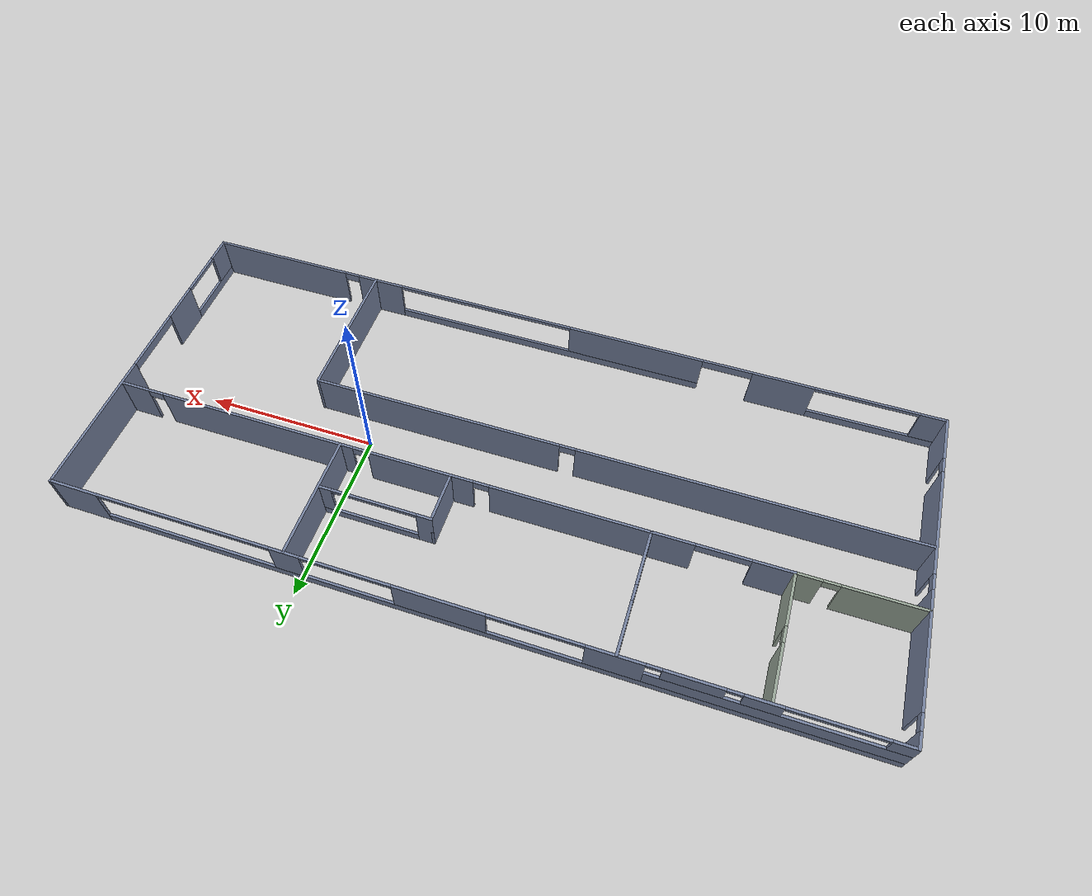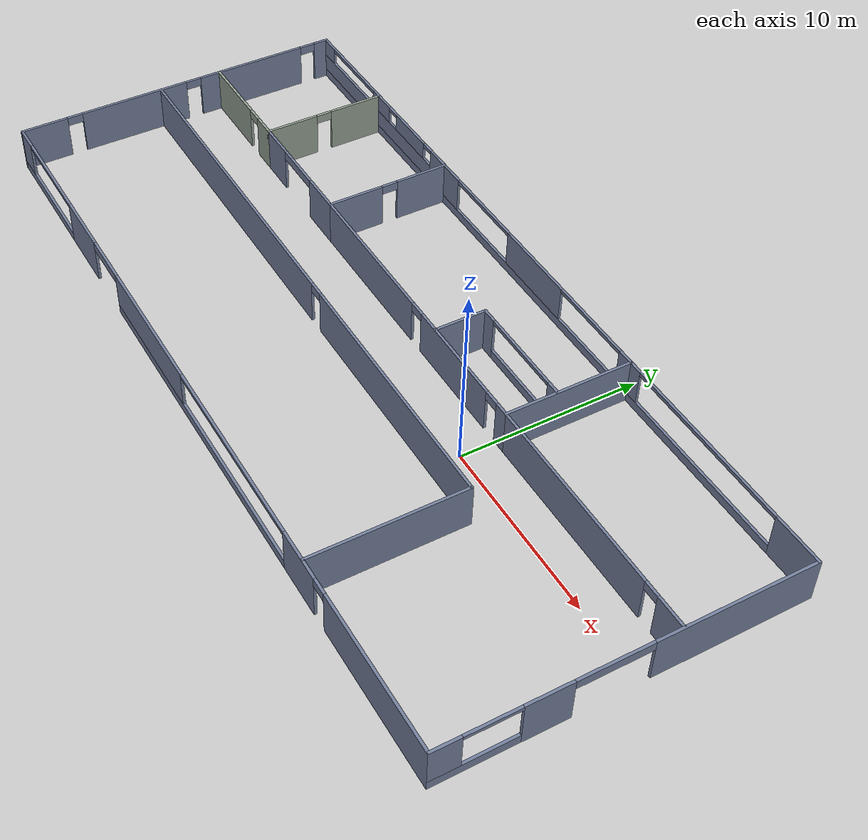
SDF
<?xml version='1.0'?>
<sdf version='1.6'>
  <model name='RnDBuilding'>
    <pose frame=''>-8.21669 -0.525696 0 0 -0 0</pose>
    <link name='Wall_0'>
      <pose frame=''>22.425 0 0 0 0 -1.5708</pose>
      <visual name='Wall_0_Visual_0'>
        <pose frame=''>-5.35844 0 1.25 0 -0 0</pose>
        <geometry>
          <box>
            <size>8.53312 0.15 2.5</size>
          </box>
        </geometry>
        <material>
          <script>
            <uri>file://media/materials/scripts/gazebo.material</uri>
            <name>Gazebo/Grey</name>
          </script>
          <ambient>0.45098 0.498039 0.611765 1</ambient>
        </material>
        <meta>
          <layer>0</layer>
        </meta>
      </visual>
      <collision name='Wall_0_Collision_0'>
        <geometry>
          <box>
            <size>8.53312 0.15 2.5</size>
          </box>
        </geometry>
        <pose frame=''>-5.35844 0 1.25 0 -0 0</pose>
      </collision>
      <visual name='Wall_0_Visual_1'>
        <pose frame=''>4.02226 0 1.25 0 -0 0</pose>
        <geometry>
          <box>
            <size>2.42827 0.15 2.5</size>
          </box>
        </geometry>
        <material>
          <script>
            <uri>file://media/materials/scripts/gazebo.material</uri>
            <name>Gazebo/Grey</name>
          </script>
          <ambient>0.45098 0.498039 0.611765 1</ambient>
        </material>
        <meta>
          <layer>0</layer>
        </meta>
      </visual>
      <collision name='Wall_0_Collision_1'>
        <geometry>
          <box>
            <size>2.42827 0.15 2.5</size>
          </box>
        </geometry>
        <pose frame=''>4.02226 0 1.25 0 -0 0</pose>
      </collision>
      <visual name='Wall_0_Visual_2'>
        <pose frame=''>7.4307 0 0.25 0 -0 0</pose>
        <geometry>
          <box>
            <size>4.38861 0.15 0.5</size>
          </box>
        </geometry>
        <material>
          <script>
            <uri>file://media/materials/scripts/gazebo.material</uri>
            <name>Gazebo/Grey</name>
          </script>
          <ambient>0.45098 0.498039 0.611765 1</ambient>
        </material>
        <meta>
          <layer>0</layer>
        </meta>
      </visual>
      <collision name='Wall_0_Collision_2'>
        <geometry>
          <box>
            <size>4.38861 0.15 0.5</size>
          </box>
        </geometry>
        <pose frame=''>7.4307 0 0.25 0 -0 0</pose>
      </collision>
      <visual name='Wall_0_Visual_3'>
        <pose frame=''>8.8307 0 1.5 0 -0 0</pose>
        <geometry>
          <box>
            <size>1.58861 0.15 2</size>
          </box>
        </geometry>
        <material>
          <script>
            <uri>file://media/materials/scripts/gazebo.material</uri>
            <name>Gazebo/Grey</name>
          </script>
          <ambient>0.45098 0.498039 0.611765 1</ambient>
        </material>
        <meta>
          <layer>0</layer>
        </meta>
      </visual>
      <collision name='Wall_0_Collision_3'>
        <geometry>
          <box>
            <size>1.58861 0.15 2</size>
          </box>
        </geometry>
        <pose frame=''>8.8307 0 1.5 0 -0 0</pose>
      </collision>
      <visual name='Wall_0_Visual_4'>
        <pose frame=''>0.858122 0 2.25 0 -0 0</pose>
        <geometry>
          <box>
            <size>3.9 0.15 0.5</size>
          </box>
        </geometry>
        <material>
          <script>
            <uri>file://media/materials/scripts/gazebo.material</uri>
            <name>Gazebo/Grey</name>
          </script>
          <ambient>0.45098 0.498039 0.611765 1</ambient>
        </material>
        <meta>
          <layer>0</layer>
        </meta>
      </visual>
      <collision name='Wall_0_Collision_4'>
        <geometry>
          <box>
            <size>3.9 0.15 0.5</size>
          </box>
        </geometry>
        <pose frame=''>0.858122 0 2.25 0 -0 0</pose>
      </collision>
      <visual name='Wall_0_Visual_5'>
        <pose frame=''>6.63639 0 2.4 0 -0 0</pose>
        <geometry>
          <box>
            <size>2.8 0.15 0.2</size>
          </box>
        </geometry>
        <material>
          <script>
            <uri>file://media/materials/scripts/gazebo.material</uri>
            <name>Gazebo/Grey</name>
          </script>
          <ambient>0.45098 0.498039 0.611765 1</ambient>
        </material>
        <meta>
          <layer>0</layer>
        </meta>
      </visual>
      <collision name='Wall_0_Collision_5'>
        <geometry>
          <box>
            <size>2.8 0.15 0.2</size>
          </box>
        </geometry>
        <pose frame=''>6.63639 0 2.4 0 -0 0</pose>
      </collision>
    </link>
    <link name='Wall_1'>
      <pose frame=''>0 -9.55 0 0 -0 3.14159</pose>
      <visual name='Wall_1_Visual_0'>
        <pose frame=''>-18.1979 0 1.25 0 -0 0</pose>
        <geometry>
          <box>
            <size>8.60412 0.15 2.5</size>
          </box>
        </geometry>
        <material>
          <script>
            <uri>file://media/materials/scripts/gazebo.material</uri>
            <name>Gazebo/Grey</name>
          </script>
          <ambient>0.45098 0.498039 0.611765 1</ambient>
        </material>
        <meta>
          <layer>0</layer>
        </meta>
      </visual>
      <collision name='Wall_1_Collision_0'>
        <geometry>
          <box>
            <size>8.60412 0.15 2.5</size>
          </box>
        </geometry>
        <pose frame=''>-18.1979 0 1.25 0 -0 0</pose>
      </collision>
      <visual name='Wall_1_Visual_1'>
        <pose frame=''>-11.5611 0 1.25 0 -0 0</pose>
        <geometry>
          <box>
            <size>2.86961 0.15 2.5</size>
          </box>
        </geometry>
        <material>
          <script>
            <uri>file://media/materials/scripts/gazebo.material</uri>
            <name>Gazebo/Grey</name>
          </script>
          <ambient>0.45098 0.498039 0.611765 1</ambient>
        </material>
        <meta>
          <layer>0</layer>
        </meta>
      </visual>
      <collision name='Wall_1_Collision_1'>
        <geometry>
          <box>
            <size>2.86961 0.15 2.5</size>
          </box>
        </geometry>
        <pose frame=''>-11.5611 0 1.25 0 -0 0</pose>
      </collision>
      <visual name='Wall_1_Visual_2'>
        <pose frame=''>13.3816 0 1.25 0 -0 0</pose>
        <geometry>
          <box>
            <size>3.56837 0.15 2.5</size>
          </box>
        </geometry>
        <material>
          <script>
            <uri>file://media/materials/scripts/gazebo.material</uri>
            <name>Gazebo/Grey</name>
          </script>
          <ambient>0.45098 0.498039 0.611765 1</ambient>
        </material>
        <meta>
          <layer>0</layer>
        </meta>
      </visual>
      <collision name='Wall_1_Collision_2'>
        <geometry>
          <box>
            <size>3.56837 0.15 2.5</size>
          </box>
        </geometry>
        <pose frame=''>13.3816 0 1.25 0 -0 0</pose>
      </collision>
      <visual name='Wall_1_Visual_3'>
        <pose frame=''>-0.714424 0 0.25 0 -0 0</pose>
        <geometry>
          <box>
            <size>18.8237 0.15 0.5</size>
          </box>
        </geometry>
        <material>
          <script>
            <uri>file://media/materials/scripts/gazebo.material</uri>
            <name>Gazebo/Grey</name>
          </script>
          <ambient>0.45098 0.498039 0.611765 1</ambient>
        </material>
        <meta>
          <layer>0</layer>
        </meta>
      </visual>
      <collision name='Wall_1_Collision_3'>
        <geometry>
          <box>
            <size>18.8237 0.15 0.5</size>
          </box>
        </geometry>
        <pose frame=''>-0.714424 0 0.25 0 -0 0</pose>
      </collision>
      <visual name='Wall_1_Visual_4'>
        <pose frame=''>18.8329 0 0.25 0 -0 0</pose>
        <geometry>
          <box>
            <size>7.33421 0.15 0.5</size>
          </box>
        </geometry>
        <material>
          <script>
            <uri>file://media/materials/scripts/gazebo.material</uri>
            <name>Gazebo/Grey</name>
          </script>
          <ambient>0.45098 0.498039 0.611765 1</ambient>
        </material>
        <meta>
          <layer>0</layer>
        </meta>
      </visual>
      <collision name='Wall_1_Collision_4'>
        <geometry>
          <box>
            <size>7.33421 0.15 0.5</size>
          </box>
        </geometry>
        <pose frame=''>18.8329 0 0.25 0 -0 0</pose>
      </collision>
      <visual name='Wall_1_Visual_5'>
        <pose frame=''>4.68558 0 1.5 0 -0 0</pose>
        <geometry>
          <box>
            <size>8.0237 0.15 2</size>
          </box>
        </geometry>
        <material>
          <script>
            <uri>file://media/materials/scripts/gazebo.material</uri>
            <name>Gazebo/Grey</name>
          </script>
          <ambient>0.45098 0.498039 0.611765 1</ambient>
        </material>
        <meta>
          <layer>0</layer>
        </meta>
      </visual>
      <collision name='Wall_1_Collision_5'>
        <geometry>
          <box>
            <size>8.0237 0.15 2</size>
          </box>
        </geometry>
        <pose frame=''>4.68558 0 1.5 0 -0 0</pose>
      </collision>
      <visual name='Wall_1_Visual_6'>
        <pose frame=''>4.68558 0 1.5 0 -0 0</pose>
        <geometry>
          <box>
            <size>8.0237 0.15 2</size>
          </box>
        </geometry>
        <material>
          <script>
            <uri>file://media/materials/scripts/gazebo.material</uri>
            <name>Gazebo/Grey</name>
          </script>
          <ambient>0.45098 0.498039 0.611765 1</ambient>
        </material>
        <meta>
          <layer>0</layer>
        </meta>
      </visual>
      <collision name='Wall_1_Collision_6'>
        <geometry>
          <box>
            <size>8.0237 0.15 2</size>
          </box>
        </geometry>
        <pose frame=''>4.68558 0 1.5 0 -0 0</pose>
      </collision>
      <visual name='Wall_1_Visual_7'>
        <pose frame=''>21.7329 0 1.5 0 -0 0</pose>
        <geometry>
          <box>
            <size>1.53421 0.15 2</size>
          </box>
        </geometry>
        <material>
          <script>
            <uri>file://media/materials/scripts/gazebo.material</uri>
            <name>Gazebo/Grey</name>
          </script>
          <ambient>0.45098 0.498039 0.611765 1</ambient>
        </material>
        <meta>
          <layer>0</layer>
        </meta>
      </visual>
      <collision name='Wall_1_Collision_7'>
        <geometry>
          <box>
            <size>1.53421 0.15 2</size>
          </box>
        </geometry>
        <pose frame=''>21.7329 0 1.5 0 -0 0</pose>
      </collision>
      <visual name='Wall_1_Visual_8'>
        <pose frame=''>-13.4459 0 2.25 0 -0 0</pose>
        <geometry>
          <box>
            <size>0.9 0.15 0.5</size>
          </box>
        </geometry>
        <material>
          <script>
            <uri>file://media/materials/scripts/gazebo.material</uri>
            <name>Gazebo/Grey</name>
          </script>
          <ambient>0.45098 0.498039 0.611765 1</ambient>
        </material>
        <meta>
          <layer>0</layer>
        </meta>
      </visual>
      <collision name='Wall_1_Collision_8'>
        <geometry>
          <box>
            <size>0.9 0.15 0.5</size>
          </box>
        </geometry>
        <pose frame=''>-13.4459 0 2.25 0 -0 0</pose>
      </collision>
      <visual name='Wall_1_Visual_9'>
        <pose frame=''>10.1474 0 2.25 0 -0 0</pose>
        <geometry>
          <box>
            <size>2.9 0.15 0.5</size>
          </box>
        </geometry>
        <material>
          <script>
            <uri>file://media/materials/scripts/gazebo.material</uri>
            <name>Gazebo/Grey</name>
          </script>
          <ambient>0.45098 0.498039 0.611765 1</ambient>
        </material>
        <meta>
          <layer>0</layer>
        </meta>
      </visual>
      <collision name='Wall_1_Collision_9'>
        <geometry>
          <box>
            <size>2.9 0.15 0.5</size>
          </box>
        </geometry>
        <pose frame=''>10.1474 0 2.25 0 -0 0</pose>
      </collision>
      <visual name='Wall_1_Visual_10'>
        <pose frame=''>10.1474 0 2.25 0 -0 0</pose>
        <geometry>
          <box>
            <size>2.9 0.15 0.5</size>
          </box>
        </geometry>
        <material>
          <script>
            <uri>file://media/materials/scripts/gazebo.material</uri>
            <name>Gazebo/Grey</name>
          </script>
          <ambient>0.45098 0.498039 0.611765 1</ambient>
        </material>
        <meta>
          <layer>0</layer>
        </meta>
      </visual>
      <collision name='Wall_1_Collision_10'>
        <geometry>
          <box>
            <size>2.9 0.15 0.5</size>
          </box>
        </geometry>
        <pose frame=''>10.1474 0 2.25 0 -0 0</pose>
      </collision>
      <visual name='Wall_1_Visual_11'>
        <pose frame=''>-4.72627 0 2.4 0 -0 0</pose>
        <geometry>
          <box>
            <size>10.8 0.15 0.2</size>
          </box>
        </geometry>
        <material>
          <script>
            <uri>file://media/materials/scripts/gazebo.material</uri>
            <name>Gazebo/Grey</name>
          </script>
          <ambient>0.45098 0.498039 0.611765 1</ambient>
        </material>
        <meta>
          <layer>0</layer>
        </meta>
      </visual>
      <collision name='Wall_1_Collision_11'>
        <geometry>
          <box>
            <size>10.8 0.15 0.2</size>
          </box>
        </geometry>
        <pose frame=''>-4.72627 0 2.4 0 -0 0</pose>
      </collision>
      <visual name='Wall_1_Visual_12'>
        <pose frame=''>18.0658 0 2.4 0 -0 0</pose>
        <geometry>
          <box>
            <size>5.8 0.15 0.2</size>
          </box>
        </geometry>
        <material>
          <script>
            <uri>file://media/materials/scripts/gazebo.material</uri>
            <name>Gazebo/Grey</name>
          </script>
          <ambient>0.45098 0.498039 0.611765 1</ambient>
        </material>
        <meta>
          <layer>0</layer>
        </meta>
      </visual>
      <collision name='Wall_1_Collision_12'>
        <geometry>
          <box>
            <size>5.8 0.15 0.2</size>
          </box>
        </geometry>
        <pose frame=''>18.0658 0 2.4 0 -0 0</pose>
      </collision>
    </link>
    <link name='Wall_14'>
      <collision name='Wall_14_Collision'>
        <geometry>
          <box>
            <size>7.15 0.15 2.5</size>
          </box>
        </geometry>
        <pose frame=''>0 0 1.25 0 -0 0</pose>
      </collision>
      <visual name='Wall_14_Visual'>
        <pose frame=''>0 0 1.25 0 -0 0</pose>
        <geometry>
          <box>
            <size>7.15 0.15 2.5</size>
          </box>
        </geometry>
        <material>
          <script>
            <uri>file://media/materials/scripts/gazebo.material</uri>
            <name>Gazebo/Grey</name>
          </script>
          <ambient>0.45098 0.498039 0.611765 1</ambient>
        </material>
        <meta>
          <layer>0</layer>
        </meta>
      </visual>
      <pose frame=''>8.825 6.02489 0 0 -0 1.5708</pose>
    </link>
    <link name='Wall_16'>
      <pose frame=''>0.15 2.52489 0 0 -0 3.14159</pose>
      <visual name='Wall_16_Visual_0'>
        <pose frame=''>-8.3402 0 1.25 0 -0 0</pose>
        <geometry>
          <box>
            <size>0.819604 0.15 2.5</size>
          </box>
        </geometry>
        <material>
          <script>
            <uri>file://media/materials/scripts/gazebo.material</uri>
            <name>Gazebo/Grey</name>
          </script>
          <ambient>0.45098 0.498039 0.611765 1</ambient>
        </material>
        <meta>
          <layer>0</layer>
        </meta>
      </visual>
      <collision name='Wall_16_Collision_0'>
        <geometry>
          <box>
            <size>0.819604 0.15 2.5</size>
          </box>
        </geometry>
        <pose frame=''>-8.3402 0 1.25 0 -0 0</pose>
      </collision>
      <visual name='Wall_16_Visual_1'>
        <pose frame=''>-4.01436 0 1.25 0 -0 0</pose>
        <geometry>
          <box>
            <size>6.03206 0.15 2.5</size>
          </box>
        </geometry>
        <material>
          <script>
            <uri>file://media/materials/scripts/gazebo.material</uri>
            <name>Gazebo/Grey</name>
          </script>
          <ambient>0.45098 0.498039 0.611765 1</ambient>
        </material>
        <meta>
          <layer>0</layer>
        </meta>
      </visual>
      <collision name='Wall_16_Collision_1'>
        <geometry>
          <box>
            <size>6.03206 0.15 2.5</size>
          </box>
        </geometry>
        <pose frame=''>-4.01436 0 1.25 0 -0 0</pose>
      </collision>
      <visual name='Wall_16_Visual_2'>
        <pose frame=''>4.32583 0 1.25 0 -0 0</pose>
        <geometry>
          <box>
            <size>8.84833 0.15 2.5</size>
          </box>
        </geometry>
        <material>
          <script>
            <uri>file://media/materials/scripts/gazebo.material</uri>
            <name>Gazebo/Grey</name>
          </script>
          <ambient>0.45098 0.498039 0.611765 1</ambient>
        </material>
        <meta>
          <layer>0</layer>
        </meta>
      </visual>
      <collision name='Wall_16_Collision_2'>
        <geometry>
          <box>
            <size>8.84833 0.15 2.5</size>
          </box>
        </geometry>
        <pose frame=''>4.32583 0 1.25 0 -0 0</pose>
      </collision>
      <visual name='Wall_16_Visual_3'>
        <pose frame=''>-7.4804 0 2.25 0 -0 0</pose>
        <geometry>
          <box>
            <size>0.9 0.15 0.5</size>
          </box>
        </geometry>
        <material>
          <script>
            <uri>file://media/materials/scripts/gazebo.material</uri>
            <name>Gazebo/Grey</name>
          </script>
          <ambient>0.45098 0.498039 0.611765 1</ambient>
        </material>
        <meta>
          <layer>0</layer>
        </meta>
      </visual>
      <collision name='Wall_16_Collision_3'>
        <geometry>
          <box>
            <size>0.9 0.15 0.5</size>
          </box>
        </geometry>
        <pose frame=''>-7.4804 0 2.25 0 -0 0</pose>
      </collision>
      <visual name='Wall_16_Visual_4'>
        <pose frame=''>-0.548333 0 2.25 0 -0 0</pose>
        <geometry>
          <box>
            <size>0.9 0.15 0.5</size>
          </box>
        </geometry>
        <material>
          <script>
            <uri>file://media/materials/scripts/gazebo.material</uri>
            <name>Gazebo/Grey</name>
          </script>
          <ambient>0.45098 0.498039 0.611765 1</ambient>
        </material>
        <meta>
          <layer>0</layer>
        </meta>
      </visual>
      <collision name='Wall_16_Collision_4'>
        <geometry>
          <box>
            <size>0.9 0.15 0.5</size>
          </box>
        </geometry>
        <pose frame=''>-0.548333 0 2.25 0 -0 0</pose>
      </collision>
    </link>
    <link name='Wall_17'>
      <pose frame=''>-8.525 6.02489 0 0 -0 1.5708</pose>
      <visual name='Wall_17_Visual_0'>
        <pose frame=''>-1.97133 0 1.25 0 -0 0</pose>
        <geometry>
          <box>
            <size>3.20734 0.15 2.5</size>
          </box>
        </geometry>
        <material>
          <script>
            <uri>file://media/materials/scripts/gazebo.material</uri>
            <name>Gazebo/Grey</name>
          </script>
          <ambient>0.45098 0.498039 0.611765 1</ambient>
        </material>
        <meta>
          <layer>0</layer>
        </meta>
      </visual>
      <collision name='Wall_17_Collision_0'>
        <geometry>
          <box>
            <size>3.20734 0.15 2.5</size>
          </box>
        </geometry>
        <pose frame=''>-1.97133 0 1.25 0 -0 0</pose>
      </collision>
      <visual name='Wall_17_Visual_1'>
        <pose frame=''>2.05367 0 1.25 0 -0 0</pose>
        <geometry>
          <box>
            <size>3.04266 0.15 2.5</size>
          </box>
        </geometry>
        <material>
          <script>
            <uri>file://media/materials/scripts/gazebo.material</uri>
            <name>Gazebo/Grey</name>
          </script>
          <ambient>0.45098 0.498039 0.611765 1</ambient>
        </material>
        <meta>
          <layer>0</layer>
        </meta>
      </visual>
      <collision name='Wall_17_Collision_1'>
        <geometry>
          <box>
            <size>3.04266 0.15 2.5</size>
          </box>
        </geometry>
        <pose frame=''>2.05367 0 1.25 0 -0 0</pose>
      </collision>
      <visual name='Wall_17_Visual_2'>
        <pose frame=''>0.082341 0 2.25 0 -0 0</pose>
        <geometry>
          <box>
            <size>0.9 0.15 0.5</size>
          </box>
        </geometry>
        <material>
          <script>
            <uri>file://media/materials/scripts/gazebo.material</uri>
            <name>Gazebo/Grey</name>
          </script>
          <ambient>0.45098 0.498039 0.611765 1</ambient>
        </material>
        <meta>
          <layer>0</layer>
        </meta>
      </visual>
      <collision name='Wall_17_Collision_2'>
        <geometry>
          <box>
            <size>0.9 0.15 0.5</size>
          </box>
        </geometry>
        <pose frame=''>0.082341 0 2.25 0 -0 0</pose>
      </collision>
    </link>
    <link name='Wall_19'>
      <collision name='Wall_19_Collision'>
        <geometry>
          <box>
            <size>3 0.15 2.5</size>
          </box>
        </geometry>
        <pose frame=''>0 0 1.25 0 -0 0</pose>
      </collision>
      <visual name='Wall_19_Visual'>
        <pose frame=''>0 0 1.25 0 -0 0</pose>
        <geometry>
          <box>
            <size>3 0.15 2.5</size>
          </box>
        </geometry>
        <material>
          <script>
            <uri>file://media/materials/scripts/gazebo.material</uri>
            <name>Gazebo/Grey</name>
          </script>
          <ambient>0.45098 0.498039 0.611765 1</ambient>
        </material>
        <meta>
          <layer>0</layer>
        </meta>
      </visual>
      <pose frame=''>2.41972 3.94989 0 0 -0 1.5708</pose>
    </link>
    <link name='Wall_20'>
      <pose frame=''>5.59472 5.37489 0 0 -0 0</pose>
      <visual name='Wall_20_Visual_0'>
        <pose frame=''>-2.79096 0 1.25 0 -0 0</pose>
        <geometry>
          <box>
            <size>0.918074 0.15 2.5</size>
          </box>
        </geometry>
        <material>
          <script>
            <uri>file://media/materials/scripts/gazebo.material</uri>
            <name>Gazebo/Grey</name>
          </script>
          <ambient>0.45098 0.498039 0.611765 1</ambient>
        </material>
        <meta>
          <layer>0</layer>
        </meta>
      </visual>
      <collision name='Wall_20_Collision_0'>
        <geometry>
          <box>
            <size>0.918074 0.15 2.5</size>
          </box>
        </geometry>
        <pose frame=''>-2.79096 0 1.25 0 -0 0</pose>
      </collision>
      <visual name='Wall_20_Visual_1'>
        <pose frame=''>0.459037 0 0.25 0 -0 0</pose>
        <geometry>
          <box>
            <size>5.58193 0.15 0.5</size>
          </box>
        </geometry>
        <material>
          <script>
            <uri>file://media/materials/scripts/gazebo.material</uri>
            <name>Gazebo/Grey</name>
          </script>
          <ambient>0.45098 0.498039 0.611765 1</ambient>
        </material>
        <meta>
          <layer>0</layer>
        </meta>
      </visual>
      <collision name='Wall_20_Collision_1'>
        <geometry>
          <box>
            <size>5.58193 0.15 0.5</size>
          </box>
        </geometry>
        <pose frame=''>0.459037 0 0.25 0 -0 0</pose>
      </collision>
      <visual name='Wall_20_Visual_2'>
        <pose frame=''>2.85904 0 1.5 0 -0 0</pose>
        <geometry>
          <box>
            <size>0.781926 0.15 2</size>
          </box>
        </geometry>
        <material>
          <script>
            <uri>file://media/materials/scripts/gazebo.material</uri>
            <name>Gazebo/Grey</name>
          </script>
          <ambient>0.45098 0.498039 0.611765 1</ambient>
        </material>
        <meta>
          <layer>0</layer>
        </meta>
      </visual>
      <collision name='Wall_20_Collision_2'>
        <geometry>
          <box>
            <size>0.781926 0.15 2</size>
          </box>
        </geometry>
        <pose frame=''>2.85904 0 1.5 0 -0 0</pose>
      </collision>
      <visual name='Wall_20_Visual_3'>
        <pose frame=''>0.068074 0 2.4 0 -0 0</pose>
        <geometry>
          <box>
            <size>4.8 0.15 0.2</size>
          </box>
        </geometry>
        <material>
          <script>
            <uri>file://media/materials/scripts/gazebo.material</uri>
            <name>Gazebo/Grey</name>
          </script>
          <ambient>0.45098 0.498039 0.611765 1</ambient>
        </material>
        <meta>
          <layer>0</layer>
        </meta>
      </visual>
      <collision name='Wall_20_Collision_3'>
        <geometry>
          <box>
            <size>4.8 0.15 0.2</size>
          </box>
        </geometry>
        <pose frame=''>0.068074 0 2.4 0 -0 0</pose>
      </collision>
    </link>
    <link name='Wall_22'>
      <pose frame=''>-12.2 2.52489 0 0 -0 3.14159</pose>
      <visual name='Wall_22_Visual_0'>
        <pose frame=''>-2.55908 0 1.25 0 -0 0</pose>
        <geometry>
          <box>
            <size>2.38184 0.15 2.5</size>
          </box>
        </geometry>
        <material>
          <script>
            <uri>file://media/materials/scripts/gazebo.material</uri>
            <name>Gazebo/Grey</name>
          </script>
          <ambient>0.45098 0.498039 0.611765 1</ambient>
        </material>
        <meta>
          <layer>0</layer>
        </meta>
      </visual>
      <collision name='Wall_22_Collision_0'>
        <geometry>
          <box>
            <size>2.38184 0.15 2.5</size>
          </box>
        </geometry>
        <pose frame=''>-2.55908 0 1.25 0 -0 0</pose>
      </collision>
      <visual name='Wall_22_Visual_1'>
        <pose frame=''>2.64092 0 1.25 0 -0 0</pose>
        <geometry>
          <box>
            <size>2.21816 0.15 2.5</size>
          </box>
        </geometry>
        <material>
          <script>
            <uri>file://media/materials/scripts/gazebo.material</uri>
            <name>Gazebo/Grey</name>
          </script>
          <ambient>0.45098 0.498039 0.611765 1</ambient>
        </material>
        <meta>
          <layer>0</layer>
        </meta>
      </visual>
      <collision name='Wall_22_Collision_1'>
        <geometry>
          <box>
            <size>2.21816 0.15 2.5</size>
          </box>
        </geometry>
        <pose frame=''>2.64092 0 1.25 0 -0 0</pose>
      </collision>
      <visual name='Wall_22_Visual_2'>
        <pose frame=''>0.081841 0 2.25 0 -0 0</pose>
        <geometry>
          <box>
            <size>2.9 0.15 0.5</size>
          </box>
        </geometry>
        <material>
          <script>
            <uri>file://media/materials/scripts/gazebo.material</uri>
            <name>Gazebo/Grey</name>
          </script>
          <ambient>0.45098 0.498039 0.611765 1</ambient>
        </material>
        <meta>
          <layer>0</layer>
        </meta>
      </visual>
      <collision name='Wall_22_Collision_2'>
        <geometry>
          <box>
            <size>2.9 0.15 0.5</size>
          </box>
        </geometry>
        <pose frame=''>0.081841 0 2.25 0 -0 0</pose>
      </collision>
    </link>
    <link name='Wall_23'>
      <pose frame=''>-15.875 6.02489 0 0 -0 1.5708</pose>
      <visual name='Wall_23_Visual_0'>
        <pose frame=''>-2.04112 0 1.25 0 -0 0</pose>
        <geometry>
          <box>
            <size>3.06777 0.15 2.5</size>
          </box>
        </geometry>
        <material>
          <script>
            <uri>file://media/materials/scripts/gazebo.material</uri>
            <name>Gazebo/Grey</name>
          </script>
          <ambient>0.580392 0.631373 0.580392 1</ambient>
        </material>
        <meta>
          <layer>0</layer>
        </meta>
      </visual>
      <collision name='Wall_23_Collision_0'>
        <geometry>
          <box>
            <size>3.06777 0.15 2.5</size>
          </box>
        </geometry>
        <pose frame=''>-2.04112 0 1.25 0 -0 0</pose>
      </collision>
      <visual name='Wall_23_Visual_1'>
        <pose frame=''>1.98388 0 1.25 0 -0 0</pose>
        <geometry>
          <box>
            <size>3.18223 0.15 2.5</size>
          </box>
        </geometry>
        <material>
          <script>
            <uri>file://media/materials/scripts/gazebo.material</uri>
            <name>Gazebo/Grey</name>
          </script>
          <ambient>0.580392 0.631373 0.580392 1</ambient>
        </material>
        <meta>
          <layer>0</layer>
        </meta>
      </visual>
      <collision name='Wall_23_Collision_1'>
        <geometry>
          <box>
            <size>3.18223 0.15 2.5</size>
          </box>
        </geometry>
        <pose frame=''>1.98388 0 1.25 0 -0 0</pose>
      </collision>
      <visual name='Wall_23_Visual_2'>
        <pose frame=''>-0.05723 0 2.25 0 -0 0</pose>
        <geometry>
          <box>
            <size>0.9 0.15 0.5</size>
          </box>
        </geometry>
        <material>
          <script>
            <uri>file://media/materials/scripts/gazebo.material</uri>
            <name>Gazebo/Grey</name>
          </script>
          <ambient>0.580392 0.631373 0.580392 1</ambient>
        </material>
        <meta>
          <layer>0</layer>
        </meta>
      </visual>
      <collision name='Wall_23_Collision_2'>
        <geometry>
          <box>
            <size>0.9 0.15 0.5</size>
          </box>
        </geometry>
        <pose frame=''>-0.05723 0 2.25 0 -0 0</pose>
      </collision>
    </link>
    <link name='Wall_25'>
      <pose frame=''>-19.125 2.52489 0 0 -0 3.14159</pose>
      <visual name='Wall_25_Visual_0'>
        <pose frame=''>-2.61069 0 1.25 0 -0 0</pose>
        <geometry>
          <box>
            <size>1.42861 0.15 2.5</size>
          </box>
        </geometry>
        <material>
          <script>
            <uri>file://media/materials/scripts/gazebo.material</uri>
            <name>Gazebo/Grey</name>
          </script>
          <ambient>0.580392 0.631373 0.580392 1</ambient>
        </material>
        <meta>
          <layer>0</layer>
        </meta>
      </visual>
      <collision name='Wall_25_Collision_0'>
        <geometry>
          <box>
            <size>1.42861 0.15 2.5</size>
          </box>
        </geometry>
        <pose frame=''>-2.61069 0 1.25 0 -0 0</pose>
      </collision>
      <visual name='Wall_25_Visual_1'>
        <pose frame=''>1.16431 0 1.25 0 -0 0</pose>
        <geometry>
          <box>
            <size>4.32139 0.15 2.5</size>
          </box>
        </geometry>
        <material>
          <script>
            <uri>file://media/materials/scripts/gazebo.material</uri>
            <name>Gazebo/Grey</name>
          </script>
          <ambient>0.580392 0.631373 0.580392 1</ambient>
        </material>
        <meta>
          <layer>0</layer>
        </meta>
      </visual>
      <collision name='Wall_25_Collision_1'>
        <geometry>
          <box>
            <size>4.32139 0.15 2.5</size>
          </box>
        </geometry>
        <pose frame=''>1.16431 0 1.25 0 -0 0</pose>
      </collision>
      <visual name='Wall_25_Visual_2'>
        <pose frame=''>-1.44639 0 2.25 0 -0 0</pose>
        <geometry>
          <box>
            <size>0.9 0.15 0.5</size>
          </box>
        </geometry>
        <material>
          <script>
            <uri>file://media/materials/scripts/gazebo.material</uri>
            <name>Gazebo/Grey</name>
          </script>
          <ambient>0.580392 0.631373 0.580392 1</ambient>
        </material>
        <meta>
          <layer>0</layer>
        </meta>
      </visual>
      <collision name='Wall_25_Collision_2'>
        <geometry>
          <box>
            <size>0.9 0.15 0.5</size>
          </box>
        </geometry>
        <pose frame=''>-1.44639 0 2.25 0 -0 0</pose>
      </collision>
    </link>
    <link name='Wall_27'>
      <collision name='Wall_27_Collision'>
        <geometry>
          <box>
            <size>8.5 0.15 2.5</size>
          </box>
        </geometry>
        <pose frame=''>0 0 1.25 0 -0 0</pose>
      </collision>
      <visual name='Wall_27_Visual'>
        <pose frame=''>0 0 1.25 0 -0 0</pose>
        <geometry>
          <box>
            <size>8.5 0.15 2.5</size>
          </box>
        </geometry>
        <material>
          <script>
            <uri>file://media/materials/scripts/gazebo.material</uri>
            <name>Gazebo/Grey</name>
          </script>
          <ambient>0.45098 0.498039 0.611765 1</ambient>
        </material>
        <meta>
          <layer>0</layer>
        </meta>
      </visual>
      <pose frame=''>11.8641 -5.3498 0 0 -0 1.5708</pose>
    </link>
    <link name='Wall_28'>
      <pose frame=''>-5.23593 -1.1748 0 0 -0 3.14159</pose>
      <visual name='Wall_28_Visual_0'>
        <pose frame=''>-9.94194 0 1.25 0 -0 0</pose>
        <geometry>
          <box>
            <size>14.4661 0.15 2.5</size>
          </box>
        </geometry>
        <material>
          <script>
            <uri>file://media/materials/scripts/gazebo.material</uri>
            <name>Gazebo/Grey</name>
          </script>
          <ambient>0.45098 0.498039 0.611765 1</ambient>
        </material>
        <meta>
          <layer>0</layer>
        </meta>
      </visual>
      <collision name='Wall_28_Collision_0'>
        <geometry>
          <box>
            <size>14.4661 0.15 2.5</size>
          </box>
        </geometry>
        <pose frame=''>-9.94194 0 1.25 0 -0 0</pose>
      </collision>
      <visual name='Wall_28_Visual_1'>
        <pose frame=''>7.68306 0 1.25 0 -0 0</pose>
        <geometry>
          <box>
            <size>18.9839 0.15 2.5</size>
          </box>
        </geometry>
        <material>
          <script>
            <uri>file://media/materials/scripts/gazebo.material</uri>
            <name>Gazebo/Grey</name>
          </script>
          <ambient>0.45098 0.498039 0.611765 1</ambient>
        </material>
        <meta>
          <layer>0</layer>
        </meta>
      </visual>
      <collision name='Wall_28_Collision_1'>
        <geometry>
          <box>
            <size>18.9839 0.15 2.5</size>
          </box>
        </geometry>
        <pose frame=''>7.68306 0 1.25 0 -0 0</pose>
      </collision>
      <visual name='Wall_28_Visual_2'>
        <pose frame=''>-2.25887 0 2.25 0 -0 0</pose>
        <geometry>
          <box>
            <size>0.9 0.15 0.5</size>
          </box>
        </geometry>
        <material>
          <script>
            <uri>file://media/materials/scripts/gazebo.material</uri>
            <name>Gazebo/Grey</name>
          </script>
          <ambient>0.45098 0.498039 0.611765 1</ambient>
        </material>
        <meta>
          <layer>0</layer>
        </meta>
      </visual>
      <collision name='Wall_28_Collision_2'>
        <geometry>
          <box>
            <size>0.9 0.15 0.5</size>
          </box>
        </geometry>
        <pose frame=''>-2.25887 0 2.25 0 -0 0</pose>
      </collision>
    </link>
    <link name='Wall_5'>
      <pose frame=''>0 9.55 0 0 -0 3.14159</pose>
      <visual name='Wall_5_Visual_0'>
        <pose frame=''>-21.0608 0 1.25 0 -0 0</pose>
        <geometry>
          <box>
            <size>2.87831 0.15 2.5</size>
          </box>
        </geometry>
        <material>
          <script>
            <uri>file://media/materials/scripts/gazebo.material</uri>
            <name>Gazebo/Grey</name>
          </script>
          <ambient>0.45098 0.498039 0.611765 1</ambient>
        </material>
        <meta>
          <layer>0</layer>
        </meta>
      </visual>
      <collision name='Wall_5_Collision_0'>
        <geometry>
          <box>
            <size>2.87831 0.15 2.5</size>
          </box>
        </geometry>
        <pose frame=''>-21.0608 0 1.25 0 -0 0</pose>
      </collision>
      <visual name='Wall_5_Visual_1'>
        <pose frame=''>1.43915 0 0.25 0 -0 0</pose>
        <geometry>
          <box>
            <size>42.1217 0.15 0.5</size>
          </box>
        </geometry>
        <material>
          <script>
            <uri>file://media/materials/scripts/gazebo.material</uri>
            <name>Gazebo/Grey</name>
          </script>
          <ambient>0.45098 0.498039 0.611765 1</ambient>
        </material>
        <meta>
          <layer>0</layer>
        </meta>
      </visual>
      <collision name='Wall_5_Collision_1'>
        <geometry>
          <box>
            <size>42.1217 0.15 0.5</size>
          </box>
        </geometry>
        <pose frame=''>1.43915 0 0.25 0 -0 0</pose>
      </collision>
      <visual name='Wall_5_Visual_2'>
        <pose frame=''>-8.78055 0 1.5 0 -0 0</pose>
        <geometry>
          <box>
            <size>1.68228 0.15 2</size>
          </box>
        </geometry>
        <material>
          <script>
            <uri>file://media/materials/scripts/gazebo.material</uri>
            <name>Gazebo/Grey</name>
          </script>
          <ambient>0.45098 0.498039 0.611765 1</ambient>
        </material>
        <meta>
          <layer>0</layer>
        </meta>
      </visual>
      <collision name='Wall_5_Collision_2'>
        <geometry>
          <box>
            <size>1.68228 0.15 2</size>
          </box>
        </geometry>
        <pose frame=''>-8.78055 0 1.5 0 -0 0</pose>
      </collision>
      <visual name='Wall_5_Visual_3'>
        <pose frame=''>-0.470461 0 1.5 0 -0 0</pose>
        <geometry>
          <box>
            <size>4.93789 0.15 2</size>
          </box>
        </geometry>
        <material>
          <script>
            <uri>file://media/materials/scripts/gazebo.material</uri>
            <name>Gazebo/Grey</name>
          </script>
          <ambient>0.45098 0.498039 0.611765 1</ambient>
        </material>
        <meta>
          <layer>0</layer>
        </meta>
      </visual>
      <collision name='Wall_5_Collision_3'>
        <geometry>
          <box>
            <size>4.93789 0.15 2</size>
          </box>
        </geometry>
        <pose frame=''>-0.470461 0 1.5 0 -0 0</pose>
      </collision>
      <visual name='Wall_5_Visual_4'>
        <pose frame=''>8.4703 0 1.5 0 -0 0</pose>
        <geometry>
          <box>
            <size>2.94362 0.15 2</size>
          </box>
        </geometry>
        <material>
          <script>
            <uri>file://media/materials/scripts/gazebo.material</uri>
            <name>Gazebo/Grey</name>
          </script>
          <ambient>0.45098 0.498039 0.611765 1</ambient>
        </material>
        <meta>
          <layer>0</layer>
        </meta>
      </visual>
      <collision name='Wall_5_Collision_4'>
        <geometry>
          <box>
            <size>2.94362 0.15 2</size>
          </box>
        </geometry>
        <pose frame=''>8.4703 0 1.5 0 -0 0</pose>
      </collision>
      <visual name='Wall_5_Visual_5'>
        <pose frame=''>16.2211 0 1 0 -0 0</pose>
        <geometry>
          <box>
            <size>12.5579 0.15 1</size>
          </box>
        </geometry>
        <material>
          <script>
            <uri>file://media/materials/scripts/gazebo.material</uri>
            <name>Gazebo/Grey</name>
          </script>
          <ambient>0.45098 0.498039 0.611765 1</ambient>
        </material>
        <meta>
          <layer>0</layer>
        </meta>
      </visual>
      <collision name='Wall_5_Collision_5'>
        <geometry>
          <box>
            <size>12.5579 0.15 1</size>
          </box>
        </geometry>
        <pose frame=''>16.2211 0 1 0 -0 0</pose>
      </collision>
      <visual name='Wall_5_Visual_6'>
        <pose frame=''>12.2637 0 2 0 -0 0</pose>
        <geometry>
          <box>
            <size>3.04328 0.15 1</size>
          </box>
        </geometry>
        <material>
          <script>
            <uri>file://media/materials/scripts/gazebo.material</uri>
            <name>Gazebo/Grey</name>
          </script>
          <ambient>0.45098 0.498039 0.611765 1</ambient>
        </material>
        <meta>
          <layer>0</layer>
        </meta>
      </visual>
      <collision name='Wall_5_Collision_6'>
        <geometry>
          <box>
            <size>3.04328 0.15 1</size>
          </box>
        </geometry>
        <pose frame=''>12.2637 0 2 0 -0 0</pose>
      </collision>
      <visual name='Wall_5_Visual_7'>
        <pose frame=''>15.5269 0 2 0 -0 0</pose>
        <geometry>
          <box>
            <size>1.88294 0.15 1</size>
          </box>
        </geometry>
        <material>
          <script>
            <uri>file://media/materials/scripts/gazebo.material</uri>
            <name>Gazebo/Grey</name>
          </script>
          <ambient>0.45098 0.498039 0.611765 1</ambient>
        </material>
        <meta>
          <layer>0</layer>
        </meta>
      </visual>
      <collision name='Wall_5_Collision_7'>
        <geometry>
          <box>
            <size>1.88294 0.15 1</size>
          </box>
        </geometry>
        <pose frame=''>15.5269 0 2 0 -0 0</pose>
      </collision>
      <visual name='Wall_5_Visual_8'>
        <pose frame=''>21.8842 0 2 0 -0 0</pose>
        <geometry>
          <box>
            <size>1.23167 0.15 1</size>
          </box>
        </geometry>
        <material>
          <script>
            <uri>file://media/materials/scripts/gazebo.material</uri>
            <name>Gazebo/Grey</name>
          </script>
          <ambient>0.45098 0.498039 0.611765 1</ambient>
        </material>
        <meta>
          <layer>0</layer>
        </meta>
      </visual>
      <collision name='Wall_5_Collision_8'>
        <geometry>
          <box>
            <size>1.23167 0.15 1</size>
          </box>
        </geometry>
        <pose frame=''>21.8842 0 2 0 -0 0</pose>
      </collision>
      <visual name='Wall_5_Visual_9'>
        <pose frame=''>-14.6217 0 2.4 0 -0 0</pose>
        <geometry>
          <box>
            <size>10 0.15 0.2</size>
          </box>
        </geometry>
        <material>
          <script>
            <uri>file://media/materials/scripts/gazebo.material</uri>
            <name>Gazebo/Grey</name>
          </script>
          <ambient>0.45098 0.498039 0.611765 1</ambient>
        </material>
        <meta>
          <layer>0</layer>
        </meta>
      </visual>
      <collision name='Wall_5_Collision_9'>
        <geometry>
          <box>
            <size>10 0.15 0.2</size>
          </box>
        </geometry>
        <pose frame=''>-14.6217 0 2.4 0 -0 0</pose>
      </collision>
      <visual name='Wall_5_Visual_10'>
        <pose frame=''>-5.43941 0 2.4 0 -0 0</pose>
        <geometry>
          <box>
            <size>5 0.15 0.2</size>
          </box>
        </geometry>
        <material>
          <script>
            <uri>file://media/materials/scripts/gazebo.material</uri>
            <name>Gazebo/Grey</name>
          </script>
          <ambient>0.45098 0.498039 0.611765 1</ambient>
        </material>
        <meta>
          <layer>0</layer>
        </meta>
      </visual>
      <collision name='Wall_5_Collision_10'>
        <geometry>
          <box>
            <size>5 0.15 0.2</size>
          </box>
        </geometry>
        <pose frame=''>-5.43941 0 2.4 0 -0 0</pose>
      </collision>
      <visual name='Wall_5_Visual_11'>
        <pose frame=''>4.49848 0 2.4 0 -0 0</pose>
        <geometry>
          <box>
            <size>5 0.15 0.2</size>
          </box>
        </geometry>
        <material>
          <script>
            <uri>file://media/materials/scripts/gazebo.material</uri>
            <name>Gazebo/Grey</name>
          </script>
          <ambient>0.45098 0.498039 0.611765 1</ambient>
        </material>
        <meta>
          <layer>0</layer>
        </meta>
      </visual>
      <collision name='Wall_5_Collision_11'>
        <geometry>
          <box>
            <size>5 0.15 0.2</size>
          </box>
        </geometry>
        <pose frame=''>4.49848 0 2.4 0 -0 0</pose>
      </collision>
      <visual name='Wall_5_Visual_12'>
        <pose frame=''>10.3421 0 2.4 0 -0 0</pose>
        <geometry>
          <box>
            <size>0.8 0.15 0.2</size>
          </box>
        </geometry>
        <material>
          <script>
            <uri>file://media/materials/scripts/gazebo.material</uri>
            <name>Gazebo/Grey</name>
          </script>
          <ambient>0.45098 0.498039 0.611765 1</ambient>
        </material>
        <meta>
          <layer>0</layer>
        </meta>
      </visual>
      <collision name='Wall_5_Collision_12'>
        <geometry>
          <box>
            <size>0.8 0.15 0.2</size>
          </box>
        </geometry>
        <pose frame=''>10.3421 0 2.4 0 -0 0</pose>
      </collision>
      <visual name='Wall_5_Visual_13'>
        <pose frame=''>14.1854 0 2.4 0 -0 0</pose>
        <geometry>
          <box>
            <size>0.8 0.15 0.2</size>
          </box>
        </geometry>
        <material>
          <script>
            <uri>file://media/materials/scripts/gazebo.material</uri>
            <name>Gazebo/Grey</name>
          </script>
          <ambient>0.45098 0.498039 0.611765 1</ambient>
        </material>
        <meta>
          <layer>0</layer>
        </meta>
      </visual>
      <collision name='Wall_5_Collision_13'>
        <geometry>
          <box>
            <size>0.8 0.15 0.2</size>
          </box>
        </geometry>
        <pose frame=''>14.1854 0 2.4 0 -0 0</pose>
      </collision>
      <visual name='Wall_5_Visual_14'>
        <pose frame=''>18.8683 0 2.4 0 -0 0</pose>
        <geometry>
          <box>
            <size>4.8 0.15 0.2</size>
          </box>
        </geometry>
        <material>
          <script>
            <uri>file://media/materials/scripts/gazebo.material</uri>
            <name>Gazebo/Grey</name>
          </script>
          <ambient>0.45098 0.498039 0.611765 1</ambient>
        </material>
        <meta>
          <layer>0</layer>
        </meta>
      </visual>
      <collision name='Wall_5_Collision_14'>
        <geometry>
          <box>
            <size>4.8 0.15 0.2</size>
          </box>
        </geometry>
        <pose frame=''>18.8683 0 2.4 0 -0 0</pose>
      </collision>
    </link>
    <link name='Wall_6'>
      <pose frame=''>-22.425 0 0 0 0 -1.5708</pose>
      <visual name='Wall_6_Visual_0'>
        <pose frame=''>-9.16117 0 1.25 0 -0 0</pose>
        <geometry>
          <box>
            <size>0.92767 0.15 2.5</size>
          </box>
        </geometry>
        <material>
          <script>
            <uri>file://media/materials/scripts/gazebo.material</uri>
            <name>Gazebo/Grey</name>
          </script>
          <ambient>0.45098 0.498039 0.611765 1</ambient>
        </material>
        <meta>
          <layer>0</layer>
        </meta>
      </visual>
      <collision name='Wall_6_Collision_0'>
        <geometry>
          <box>
            <size>0.92767 0.15 2.5</size>
          </box>
        </geometry>
        <pose frame=''>-9.16117 0 1.25 0 -0 0</pose>
      </collision>
      <visual name='Wall_6_Visual_1'>
        <pose frame=''>-4.54868 0 1.25 0 -0 0</pose>
        <geometry>
          <box>
            <size>6.4973 0.15 2.5</size>
          </box>
        </geometry>
        <material>
          <script>
            <uri>file://media/materials/scripts/gazebo.material</uri>
            <name>Gazebo/Grey</name>
          </script>
          <ambient>0.45098 0.498039 0.611765 1</ambient>
        </material>
        <meta>
          <layer>0</layer>
        </meta>
      </visual>
      <collision name='Wall_6_Collision_1'>
        <geometry>
          <box>
            <size>6.4973 0.15 2.5</size>
          </box>
        </geometry>
        <pose frame=''>-4.54868 0 1.25 0 -0 0</pose>
      </collision>
      <visual name='Wall_6_Visual_2'>
        <pose frame=''>2.8021 0 1.25 0 -0 0</pose>
        <geometry>
          <box>
            <size>6.40425 0.15 2.5</size>
          </box>
        </geometry>
        <material>
          <script>
            <uri>file://media/materials/scripts/gazebo.material</uri>
            <name>Gazebo/Grey</name>
          </script>
          <ambient>0.45098 0.498039 0.611765 1</ambient>
        </material>
        <meta>
          <layer>0</layer>
        </meta>
      </visual>
      <collision name='Wall_6_Collision_2'>
        <geometry>
          <box>
            <size>6.40425 0.15 2.5</size>
          </box>
        </geometry>
        <pose frame=''>2.8021 0 1.25 0 -0 0</pose>
      </collision>
      <visual name='Wall_6_Visual_3'>
        <pose frame=''>8.26461 0 1.25 0 -0 0</pose>
        <geometry>
          <box>
            <size>2.72077 0.15 2.5</size>
          </box>
        </geometry>
        <material>
          <script>
            <uri>file://media/materials/scripts/gazebo.material</uri>
            <name>Gazebo/Grey</name>
          </script>
          <ambient>0.45098 0.498039 0.611765 1</ambient>
        </material>
        <meta>
          <layer>0</layer>
        </meta>
      </visual>
      <collision name='Wall_6_Collision_3'>
        <geometry>
          <box>
            <size>2.72077 0.15 2.5</size>
          </box>
        </geometry>
        <pose frame=''>8.26461 0 1.25 0 -0 0</pose>
      </collision>
      <visual name='Wall_6_Visual_4'>
        <pose frame=''>-8.24733 0 2.25 0 -0 0</pose>
        <geometry>
          <box>
            <size>0.9 0.15 0.5</size>
          </box>
        </geometry>
        <material>
          <script>
            <uri>file://media/materials/scripts/gazebo.material</uri>
            <name>Gazebo/Grey</name>
          </script>
          <ambient>0.45098 0.498039 0.611765 1</ambient>
        </material>
        <meta>
          <layer>0</layer>
        </meta>
      </visual>
      <collision name='Wall_6_Collision_4'>
        <geometry>
          <box>
            <size>0.9 0.15 0.5</size>
          </box>
        </geometry>
        <pose frame=''>-8.24733 0 2.25 0 -0 0</pose>
      </collision>
      <visual name='Wall_6_Visual_5'>
        <pose frame=''>-0.850028 0 2.25 0 -0 0</pose>
        <geometry>
          <box>
            <size>0.9 0.15 0.5</size>
          </box>
        </geometry>
        <material>
          <script>
            <uri>file://media/materials/scripts/gazebo.material</uri>
            <name>Gazebo/Grey</name>
          </script>
          <ambient>0.45098 0.498039 0.611765 1</ambient>
        </material>
        <meta>
          <layer>0</layer>
        </meta>
      </visual>
      <collision name='Wall_6_Collision_5'>
        <geometry>
          <box>
            <size>0.9 0.15 0.5</size>
          </box>
        </geometry>
        <pose frame=''>-0.850028 0 2.25 0 -0 0</pose>
      </collision>
      <visual name='Wall_6_Visual_6'>
        <pose frame=''>6.45423 0 2.25 0 -0 0</pose>
        <geometry>
          <box>
            <size>0.9 0.15 0.5</size>
          </box>
        </geometry>
        <material>
          <script>
            <uri>file://media/materials/scripts/gazebo.material</uri>
            <name>Gazebo/Grey</name>
          </script>
          <ambient>0.45098 0.498039 0.611765 1</ambient>
        </material>
        <meta>
          <layer>0</layer>
        </meta>
      </visual>
      <collision name='Wall_6_Collision_6'>
        <geometry>
          <box>
            <size>0.9 0.15 0.5</size>
          </box>
        </geometry>
        <pose frame=''>6.45423 0 2.25 0 -0 0</pose>
      </collision>
    </link>
    <link name='Wall_9'>
      <pose frame=''>15.625 2.52489 0 0 -0 3.14159</pose>
      <visual name='Wall_9_Visual_0'>
        <pose frame=''>-5.94593 0 1.25 0 -0 0</pose>
        <geometry>
          <box>
            <size>1.85815 0.15 2.5</size>
          </box>
        </geometry>
        <material>
          <script>
            <uri>file://media/materials/scripts/gazebo.material</uri>
            <name>Gazebo/Grey</name>
          </script>
          <ambient>0.45098 0.498039 0.611765 1</ambient>
        </material>
        <meta>
          <layer>0</layer>
        </meta>
      </visual>
      <collision name='Wall_9_Collision_0'>
        <geometry>
          <box>
            <size>1.85815 0.15 2.5</size>
          </box>
        </geometry>
        <pose frame=''>-5.94593 0 1.25 0 -0 0</pose>
      </collision>
      <visual name='Wall_9_Visual_1'>
        <pose frame=''>1.37907 0 1.25 0 -0 0</pose>
        <geometry>
          <box>
            <size>10.9919 0.15 2.5</size>
          </box>
        </geometry>
        <material>
          <script>
            <uri>file://media/materials/scripts/gazebo.material</uri>
            <name>Gazebo/Grey</name>
          </script>
          <ambient>0.45098 0.498039 0.611765 1</ambient>
        </material>
        <meta>
          <layer>0</layer>
        </meta>
      </visual>
      <collision name='Wall_9_Collision_1'>
        <geometry>
          <box>
            <size>10.9919 0.15 2.5</size>
          </box>
        </geometry>
        <pose frame=''>1.37907 0 1.25 0 -0 0</pose>
      </collision>
      <visual name='Wall_9_Visual_2'>
        <pose frame=''>-4.56685 0 2.25 0 -0 0</pose>
        <geometry>
          <box>
            <size>0.9 0.15 0.5</size>
          </box>
        </geometry>
        <material>
          <script>
            <uri>file://media/materials/scripts/gazebo.material</uri>
            <name>Gazebo/Grey</name>
          </script>
          <ambient>0.45098 0.498039 0.611765 1</ambient>
        </material>
        <meta>
          <layer>0</layer>
        </meta>
      </visual>
      <collision name='Wall_9_Collision_2'>
        <geometry>
          <box>
            <size>0.9 0.15 0.5</size>
          </box>
        </geometry>
        <pose frame=''>-4.56685 0 2.25 0 -0 0</pose>
      </collision>
    </link>
    <static>1</static>
  </model>
</sdf>
